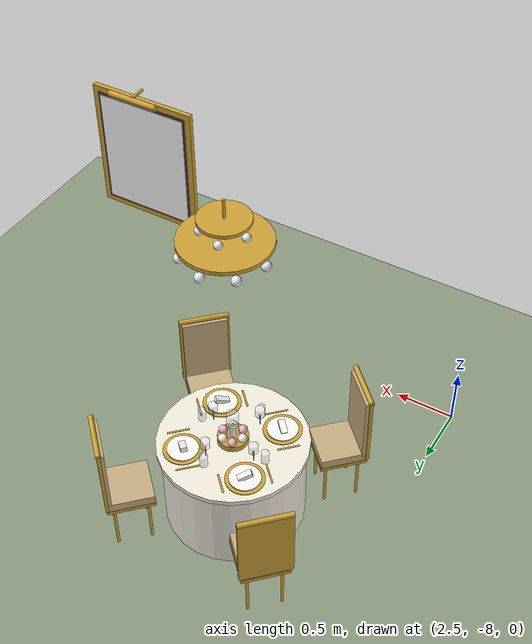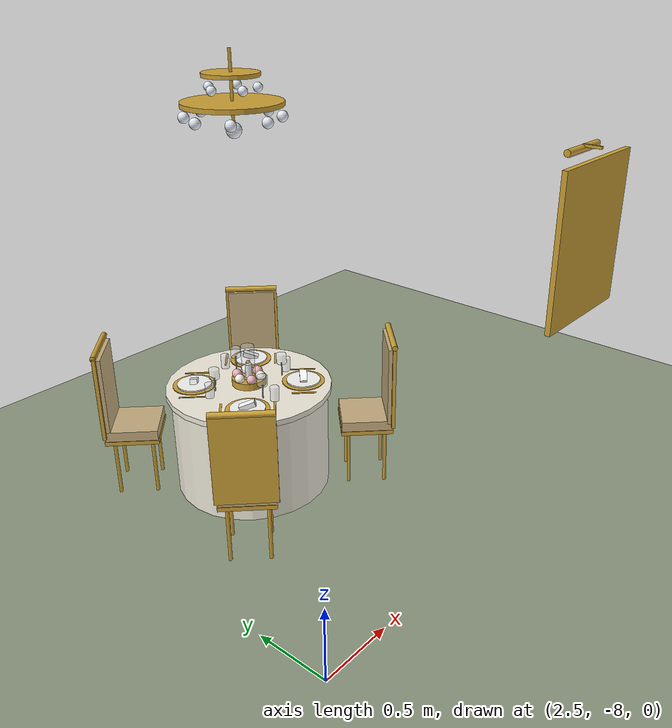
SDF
<sdf version="1.9">
 <world name="dar_tunibot">
  <model name="ground_plane">
   <static>true</static>
   <link name="link">
    <collision name="collision">
     <geometry><plane><normal>0 0 1</normal><size>60 60</size></plane></geometry>
    </collision>
    <visual name="visual">
     <geometry><plane><normal>0 0 1</normal><size>60 60</size></plane></geometry>
     <material><ambient>0.55 0.6 0.5 1</ambient><diffuse>0.55 0.6 0.5 1</diffuse></material>
    </visual>
   </link>
  </model>
  <model name="table_7">
   <static>true</static>
   <pose>3.6 -6.3 0 0 0 0</pose>
   <link name="link">
    <visual name="cloth_v">
     <pose>0.000 0.000 0.370 0.0000 0.0000 0.0000</pose>
     <geometry><cylinder><radius>0.550</radius><length>0.740</length></cylinder></geometry>
     <material>
      <ambient>0.95 0.93 0.87 1</ambient>
      <diffuse>0.95 0.93 0.87 1</diffuse>
      <specular>0.1 0.1 0.1 1</specular>
     </material>
    </visual>
    <collision name="cloth_c">
     <pose>0.000 0.000 0.370 0.0000 0.0000 0.0000</pose>
     <geometry><cylinder><radius>0.550</radius><length>0.740</length></cylinder></geometry>
    </collision>
    <visual name="drape_v">
     <pose>0.000 0.000 0.750 0.0000 0.0000 0.0000</pose>
     <geometry><cylinder><radius>0.580</radius><length>0.040</length></cylinder></geometry>
     <material>
      <ambient>0.95 0.93 0.87 1</ambient>
      <diffuse>0.95 0.93 0.87 1</diffuse>
      <specular>0.1 0.1 0.1 1</specular>
     </material>
    </visual>
    <visual name="bowl_v">
     <pose>0.000 0.000 0.795 0.0000 0.0000 0.0000</pose>
     <geometry><cylinder><radius>0.120</radius><length>0.050</length></cylinder></geometry>
     <material>
      <ambient>0.8 0.63 0.21 1</ambient>
      <diffuse>0.8 0.63 0.21 1</diffuse>
      <specular>0.1 0.1 0.1 1</specular>
     </material>
    </visual>
    <visual name="bowl_foot_v">
     <pose>0.000 0.000 0.775 0.0000 0.0000 0.0000</pose>
     <geometry><cylinder><radius>0.060</radius><length>0.020</length></cylinder></geometry>
     <material>
      <ambient>0.8 0.63 0.21 1</ambient>
      <diffuse>0.8 0.63 0.21 1</diffuse>
      <specular>0.1 0.1 0.1 1</specular>
     </material>
    </visual>
    <visual name="candle_v">
     <pose>0.000 0.000 0.870 0.0000 0.0000 0.0000</pose>
     <geometry><cylinder><radius>0.022</radius><length>0.100</length></cylinder></geometry>
     <material>
      <ambient>0.98 0.98 0.97 1</ambient>
      <diffuse>0.98 0.98 0.97 1</diffuse>
      <specular>0.1 0.1 0.1 1</specular>
     </material>
    </visual>
    <visual name="flame_v">
     <pose>0.000 0.000 0.935 0.0000 0.0000 0.0000</pose>
     <geometry><sphere><radius>0.014</radius></sphere></geometry>
     <material>
      <ambient>0.8 0.63 0.21 1</ambient>
      <diffuse>0.8 0.63 0.21 1</diffuse>
      <specular>0.1 0.1 0.1 1</specular>
      <emissive>1.0 0.6 0.2 1</emissive>
     </material>
    </visual>
    <visual name="hurricane_v">
     <pose>0.000 0.000 0.940 0.0000 0.0000 0.0000</pose>
     <geometry><cylinder><radius>0.045</radius><length>0.240</length></cylinder></geometry>
     <transparency>0.75</transparency>
     <material>
      <ambient>0.9 0.92 0.96 1</ambient>
      <diffuse>0.9 0.92 0.96 1</diffuse>
      <specular>0.1 0.1 0.1 1</specular>
     </material>
    </visual>
    <visual name="rose0_v">
     <pose>0.085 0.000 0.835 0.0000 0.0000 0.0000</pose>
     <geometry><sphere><radius>0.035</radius></sphere></geometry>
     <material>
      <ambient>0.93 0.7 0.72 1</ambient>
      <diffuse>0.93 0.7 0.72 1</diffuse>
      <specular>0.1 0.1 0.1 1</specular>
     </material>
    </visual>
    <visual name="rose1_v">
     <pose>0.043 0.074 0.835 0.0000 0.0000 0.0000</pose>
     <geometry><sphere><radius>0.035</radius></sphere></geometry>
     <material>
      <ambient>0.97 0.95 0.91 1</ambient>
      <diffuse>0.97 0.95 0.91 1</diffuse>
      <specular>0.1 0.1 0.1 1</specular>
     </material>
    </visual>
    <visual name="rose2_v">
     <pose>-0.042 0.074 0.835 0.0000 0.0000 0.0000</pose>
     <geometry><sphere><radius>0.035</radius></sphere></geometry>
     <material>
      <ambient>0.93 0.7 0.72 1</ambient>
      <diffuse>0.93 0.7 0.72 1</diffuse>
      <specular>0.1 0.1 0.1 1</specular>
     </material>
    </visual>
    <visual name="rose3_v">
     <pose>-0.085 0.000 0.835 0.0000 0.0000 0.0000</pose>
     <geometry><sphere><radius>0.035</radius></sphere></geometry>
     <material>
      <ambient>0.97 0.95 0.91 1</ambient>
      <diffuse>0.97 0.95 0.91 1</diffuse>
      <specular>0.1 0.1 0.1 1</specular>
     </material>
    </visual>
    <visual name="rose4_v">
     <pose>-0.043 -0.074 0.835 0.0000 0.0000 0.0000</pose>
     <geometry><sphere><radius>0.035</radius></sphere></geometry>
     <material>
      <ambient>0.93 0.7 0.72 1</ambient>
      <diffuse>0.93 0.7 0.72 1</diffuse>
      <specular>0.1 0.1 0.1 1</specular>
     </material>
    </visual>
    <visual name="rose5_v">
     <pose>0.043 -0.074 0.835 0.0000 0.0000 0.0000</pose>
     <geometry><sphere><radius>0.035</radius></sphere></geometry>
     <material>
      <ambient>0.97 0.95 0.91 1</ambient>
      <diffuse>0.97 0.95 0.91 1</diffuse>
      <specular>0.1 0.1 0.1 1</specular>
     </material>
    </visual>
    <collision name="seat0_c">
     <pose>0.580 0.580 0.225 0.0000 0.0000 0.0000</pose>
     <geometry><box><size>0.400 0.400 0.450</size></box></geometry>
    </collision>
    <visual name="seat_frame0_v">
     <pose>0.580 0.580 0.430 0.0000 0.0000 0.7854</pose>
     <geometry><box><size>0.370 0.370 0.030</size></box></geometry>
     <material>
      <ambient>0.8 0.63 0.21 1</ambient>
      <diffuse>0.8 0.63 0.21 1</diffuse>
      <specular>0.1 0.1 0.1 1</specular>
     </material>
    </visual>
    <visual name="cushion0_v">
     <pose>0.580 0.580 0.480 0.0000 0.0000 0.7854</pose>
     <geometry><box><size>0.360 0.360 0.070</size></box></geometry>
     <material>
      <ambient>0.78 0.68 0.5 1</ambient>
      <diffuse>0.78 0.68 0.5 1</diffuse>
      <specular>0.1 0.1 0.1 1</specular>
     </material>
    </visual>
    <visual name="back_frame0_v">
     <pose>0.707 0.707 0.780 0.0000 0.0000 0.7854</pose>
     <geometry><box><size>0.025 0.400 0.620</size></box></geometry>
     <material>
      <ambient>0.8 0.63 0.21 1</ambient>
      <diffuse>0.8 0.63 0.21 1</diffuse>
      <specular>0.1 0.1 0.1 1</specular>
     </material>
    </visual>
    <visual name="back0_v">
     <pose>0.697 0.697 0.780 0.0000 0.0000 0.7854</pose>
     <geometry><box><size>0.050 0.360 0.580</size></box></geometry>
     <material>
      <ambient>0.78 0.68 0.5 1</ambient>
      <diffuse>0.78 0.68 0.5 1</diffuse>
      <specular>0.1 0.1 0.1 1</specular>
     </material>
    </visual>
    <visual name="back_top0_v">
     <pose>0.707 0.707 1.090 1.5708 0.0000 0.7854</pose>
     <geometry><cylinder><radius>0.020</radius><length>0.400</length></cylinder></geometry>
     <material>
      <ambient>0.8 0.63 0.21 1</ambient>
      <diffuse>0.8 0.63 0.21 1</diffuse>
      <specular>0.1 0.1 0.1 1</specular>
     </material>
    </visual>
    <visual name="leg0_0_v">
     <pose>0.580 0.396 0.210 0.0000 0.0000 0.7854</pose>
     <geometry><cylinder><radius>0.012</radius><length>0.420</length></cylinder></geometry>
     <material>
      <ambient>0.8 0.63 0.21 1</ambient>
      <diffuse>0.8 0.63 0.21 1</diffuse>
      <specular>0.1 0.1 0.1 1</specular>
     </material>
    </visual>
    <visual name="leg0_1_v">
     <pose>0.396 0.580 0.210 0.0000 0.0000 0.7854</pose>
     <geometry><cylinder><radius>0.012</radius><length>0.420</length></cylinder></geometry>
     <material>
      <ambient>0.8 0.63 0.21 1</ambient>
      <diffuse>0.8 0.63 0.21 1</diffuse>
      <specular>0.1 0.1 0.1 1</specular>
     </material>
    </visual>
    <visual name="leg0_2_v">
     <pose>0.764 0.580 0.210 0.0000 0.0000 0.7854</pose>
     <geometry><cylinder><radius>0.012</radius><length>0.420</length></cylinder></geometry>
     <material>
      <ambient>0.8 0.63 0.21 1</ambient>
      <diffuse>0.8 0.63 0.21 1</diffuse>
      <specular>0.1 0.1 0.1 1</specular>
     </material>
    </visual>
    <visual name="leg0_3_v">
     <pose>0.580 0.764 0.210 0.0000 0.0000 0.7854</pose>
     <geometry><cylinder><radius>0.012</radius><length>0.420</length></cylinder></geometry>
     <material>
      <ambient>0.8 0.63 0.21 1</ambient>
      <diffuse>0.8 0.63 0.21 1</diffuse>
      <specular>0.1 0.1 0.1 1</specular>
     </material>
    </visual>
    <visual name="charger0_v">
     <pose>0.269 0.269 0.773 0.0000 0.0000 0.7854</pose>
     <geometry><cylinder><radius>0.150</radius><length>0.006</length></cylinder></geometry>
     <material>
      <ambient>0.8 0.63 0.21 1</ambient>
      <diffuse>0.8 0.63 0.21 1</diffuse>
      <specular>0.1 0.1 0.1 1</specular>
     </material>
    </visual>
    <visual name="plate0_v">
     <pose>0.269 0.269 0.781 0.0000 0.0000 0.7854</pose>
     <geometry><cylinder><radius>0.120</radius><length>0.010</length></cylinder></geometry>
     <material>
      <ambient>0.98 0.98 0.97 1</ambient>
      <diffuse>0.98 0.98 0.97 1</diffuse>
      <specular>0.1 0.1 0.1 1</specular>
     </material>
    </visual>
    <visual name="napkin0_v">
     <pose>0.269 0.269 0.803 0.3500 0.0000 0.7854</pose>
     <geometry><box><size>0.050 0.110 0.035</size></box></geometry>
     <material>
      <ambient>0.98 0.98 0.97 1</ambient>
      <diffuse>0.98 0.98 0.97 1</diffuse>
      <specular>0.1 0.1 0.1 1</specular>
     </material>
    </visual>
    <visual name="fork0_v">
     <pose>0.396 0.141 0.772 0.0000 0.0000 0.7854</pose>
     <geometry><box><size>0.170 0.014 0.004</size></box></geometry>
     <material>
      <ambient>0.8 0.63 0.21 1</ambient>
      <diffuse>0.8 0.63 0.21 1</diffuse>
      <specular>0.1 0.1 0.1 1</specular>
     </material>
    </visual>
    <visual name="knife0_v">
     <pose>0.141 0.396 0.772 0.0000 0.0000 0.7854</pose>
     <geometry><box><size>0.180 0.012 0.004</size></box></geometry>
     <material>
      <ambient>0.8 0.63 0.21 1</ambient>
      <diffuse>0.8 0.63 0.21 1</diffuse>
      <specular>0.1 0.1 0.1 1</specular>
     </material>
    </visual>
    <visual name="wine_stem0_v">
     <pose>0.092 0.233 0.820 0.0000 0.0000 0.7854</pose>
     <geometry><cylinder><radius>0.004</radius><length>0.100</length></cylinder></geometry>
     <material>
      <ambient>0.9 0.92 0.96 1</ambient>
      <diffuse>0.9 0.92 0.96 1</diffuse>
      <specular>0.1 0.1 0.1 1</specular>
     </material>
    </visual>
    <visual name="wine_bowl0_v">
     <pose>0.092 0.233 0.905 0.0000 0.0000 0.7854</pose>
     <geometry><cylinder><radius>0.035</radius><length>0.070</length></cylinder></geometry>
     <transparency>0.6</transparency>
     <material>
      <ambient>0.9 0.92 0.96 1</ambient>
      <diffuse>0.9 0.92 0.96 1</diffuse>
      <specular>0.1 0.1 0.1 1</specular>
     </material>
    </visual>
    <visual name="water0_v">
     <pose>0.057 0.311 0.820 0.0000 0.0000 0.7854</pose>
     <geometry><cylinder><radius>0.030</radius><length>0.100</length></cylinder></geometry>
     <transparency>0.6</transparency>
     <material>
      <ambient>0.9 0.92 0.96 1</ambient>
      <diffuse>0.9 0.92 0.96 1</diffuse>
      <specular>0.1 0.1 0.1 1</specular>
     </material>
    </visual>
    <collision name="seat1_c">
     <pose>-0.580 0.580 0.225 0.0000 0.0000 0.0000</pose>
     <geometry><box><size>0.400 0.400 0.450</size></box></geometry>
    </collision>
    <visual name="seat_frame1_v">
     <pose>-0.580 0.580 0.430 0.0000 0.0000 2.3562</pose>
     <geometry><box><size>0.370 0.370 0.030</size></box></geometry>
     <material>
      <ambient>0.8 0.63 0.21 1</ambient>
      <diffuse>0.8 0.63 0.21 1</diffuse>
      <specular>0.1 0.1 0.1 1</specular>
     </material>
    </visual>
    <visual name="cushion1_v">
     <pose>-0.580 0.580 0.480 0.0000 0.0000 2.3562</pose>
     <geometry><box><size>0.360 0.360 0.070</size></box></geometry>
     <material>
      <ambient>0.78 0.68 0.5 1</ambient>
      <diffuse>0.78 0.68 0.5 1</diffuse>
      <specular>0.1 0.1 0.1 1</specular>
     </material>
    </visual>
    <visual name="back_frame1_v">
     <pose>-0.707 0.707 0.780 0.0000 0.0000 2.3562</pose>
     <geometry><box><size>0.025 0.400 0.620</size></box></geometry>
     <material>
      <ambient>0.8 0.63 0.21 1</ambient>
      <diffuse>0.8 0.63 0.21 1</diffuse>
      <specular>0.1 0.1 0.1 1</specular>
     </material>
    </visual>
    <visual name="back1_v">
     <pose>-0.697 0.697 0.780 0.0000 0.0000 2.3562</pose>
     <geometry><box><size>0.050 0.360 0.580</size></box></geometry>
     <material>
      <ambient>0.78 0.68 0.5 1</ambient>
      <diffuse>0.78 0.68 0.5 1</diffuse>
      <specular>0.1 0.1 0.1 1</specular>
     </material>
    </visual>
    <visual name="back_top1_v">
     <pose>-0.707 0.707 1.090 1.5708 0.0000 2.3562</pose>
     <geometry><cylinder><radius>0.020</radius><length>0.400</length></cylinder></geometry>
     <material>
      <ambient>0.8 0.63 0.21 1</ambient>
      <diffuse>0.8 0.63 0.21 1</diffuse>
      <specular>0.1 0.1 0.1 1</specular>
     </material>
    </visual>
    <visual name="leg1_0_v">
     <pose>-0.396 0.580 0.210 0.0000 0.0000 2.3562</pose>
     <geometry><cylinder><radius>0.012</radius><length>0.420</length></cylinder></geometry>
     <material>
      <ambient>0.8 0.63 0.21 1</ambient>
      <diffuse>0.8 0.63 0.21 1</diffuse>
      <specular>0.1 0.1 0.1 1</specular>
     </material>
    </visual>
    <visual name="leg1_1_v">
     <pose>-0.580 0.396 0.210 0.0000 0.0000 2.3562</pose>
     <geometry><cylinder><radius>0.012</radius><length>0.420</length></cylinder></geometry>
     <material>
      <ambient>0.8 0.63 0.21 1</ambient>
      <diffuse>0.8 0.63 0.21 1</diffuse>
      <specular>0.1 0.1 0.1 1</specular>
     </material>
    </visual>
    <visual name="leg1_2_v">
     <pose>-0.580 0.764 0.210 0.0000 0.0000 2.3562</pose>
     <geometry><cylinder><radius>0.012</radius><length>0.420</length></cylinder></geometry>
     <material>
      <ambient>0.8 0.63 0.21 1</ambient>
      <diffuse>0.8 0.63 0.21 1</diffuse>
      <specular>0.1 0.1 0.1 1</specular>
     </material>
    </visual>
    <visual name="leg1_3_v">
     <pose>-0.764 0.580 0.210 0.0000 0.0000 2.3562</pose>
     <geometry><cylinder><radius>0.012</radius><length>0.420</length></cylinder></geometry>
     <material>
      <ambient>0.8 0.63 0.21 1</ambient>
      <diffuse>0.8 0.63 0.21 1</diffuse>
      <specular>0.1 0.1 0.1 1</specular>
     </material>
    </visual>
    <visual name="charger1_v">
     <pose>-0.269 0.269 0.773 0.0000 0.0000 2.3562</pose>
     <geometry><cylinder><radius>0.150</radius><length>0.006</length></cylinder></geometry>
     <material>
      <ambient>0.8 0.63 0.21 1</ambient>
      <diffuse>0.8 0.63 0.21 1</diffuse>
      <specular>0.1 0.1 0.1 1</specular>
     </material>
    </visual>
    <visual name="plate1_v">
     <pose>-0.269 0.269 0.781 0.0000 0.0000 2.3562</pose>
     <geometry><cylinder><radius>0.120</radius><length>0.010</length></cylinder></geometry>
     <material>
      <ambient>0.98 0.98 0.97 1</ambient>
      <diffuse>0.98 0.98 0.97 1</diffuse>
      <specular>0.1 0.1 0.1 1</specular>
     </material>
    </visual>
    <visual name="napkin1_v">
     <pose>-0.269 0.269 0.803 0.3500 0.0000 2.3562</pose>
     <geometry><box><size>0.050 0.110 0.035</size></box></geometry>
     <material>
      <ambient>0.98 0.98 0.97 1</ambient>
      <diffuse>0.98 0.98 0.97 1</diffuse>
      <specular>0.1 0.1 0.1 1</specular>
     </material>
    </visual>
    <visual name="fork1_v">
     <pose>-0.141 0.396 0.772 0.0000 0.0000 2.3562</pose>
     <geometry><box><size>0.170 0.014 0.004</size></box></geometry>
     <material>
      <ambient>0.8 0.63 0.21 1</ambient>
      <diffuse>0.8 0.63 0.21 1</diffuse>
      <specular>0.1 0.1 0.1 1</specular>
     </material>
    </visual>
    <visual name="knife1_v">
     <pose>-0.396 0.141 0.772 0.0000 0.0000 2.3562</pose>
     <geometry><box><size>0.180 0.012 0.004</size></box></geometry>
     <material>
      <ambient>0.8 0.63 0.21 1</ambient>
      <diffuse>0.8 0.63 0.21 1</diffuse>
      <specular>0.1 0.1 0.1 1</specular>
     </material>
    </visual>
    <visual name="wine_stem1_v">
     <pose>-0.233 0.092 0.820 0.0000 0.0000 2.3562</pose>
     <geometry><cylinder><radius>0.004</radius><length>0.100</length></cylinder></geometry>
     <material>
      <ambient>0.9 0.92 0.96 1</ambient>
      <diffuse>0.9 0.92 0.96 1</diffuse>
      <specular>0.1 0.1 0.1 1</specular>
     </material>
    </visual>
    <visual name="wine_bowl1_v">
     <pose>-0.233 0.092 0.905 0.0000 0.0000 2.3562</pose>
     <geometry><cylinder><radius>0.035</radius><length>0.070</length></cylinder></geometry>
     <transparency>0.6</transparency>
     <material>
      <ambient>0.9 0.92 0.96 1</ambient>
      <diffuse>0.9 0.92 0.96 1</diffuse>
      <specular>0.1 0.1 0.1 1</specular>
     </material>
    </visual>
    <visual name="water1_v">
     <pose>-0.311 0.057 0.820 0.0000 0.0000 2.3562</pose>
     <geometry><cylinder><radius>0.030</radius><length>0.100</length></cylinder></geometry>
     <transparency>0.6</transparency>
     <material>
      <ambient>0.9 0.92 0.96 1</ambient>
      <diffuse>0.9 0.92 0.96 1</diffuse>
      <specular>0.1 0.1 0.1 1</specular>
     </material>
    </visual>
    <collision name="seat2_c">
     <pose>-0.580 -0.580 0.225 0.0000 0.0000 0.0000</pose>
     <geometry><box><size>0.400 0.400 0.450</size></box></geometry>
    </collision>
    <visual name="seat_frame2_v">
     <pose>-0.580 -0.580 0.430 0.0000 0.0000 3.9270</pose>
     <geometry><box><size>0.370 0.370 0.030</size></box></geometry>
     <material>
      <ambient>0.8 0.63 0.21 1</ambient>
      <diffuse>0.8 0.63 0.21 1</diffuse>
      <specular>0.1 0.1 0.1 1</specular>
     </material>
    </visual>
    <visual name="cushion2_v">
     <pose>-0.580 -0.580 0.480 0.0000 0.0000 3.9270</pose>
     <geometry><box><size>0.360 0.360 0.070</size></box></geometry>
     <material>
      <ambient>0.78 0.68 0.5 1</ambient>
      <diffuse>0.78 0.68 0.5 1</diffuse>
      <specular>0.1 0.1 0.1 1</specular>
     </material>
    </visual>
    <visual name="back_frame2_v">
     <pose>-0.707 -0.707 0.780 0.0000 0.0000 3.9270</pose>
     <geometry><box><size>0.025 0.400 0.620</size></box></geometry>
     <material>
      <ambient>0.8 0.63 0.21 1</ambient>
      <diffuse>0.8 0.63 0.21 1</diffuse>
      <specular>0.1 0.1 0.1 1</specular>
     </material>
    </visual>
    <visual name="back2_v">
     <pose>-0.697 -0.697 0.780 0.0000 0.0000 3.9270</pose>
     <geometry><box><size>0.050 0.360 0.580</size></box></geometry>
     <material>
      <ambient>0.78 0.68 0.5 1</ambient>
      <diffuse>0.78 0.68 0.5 1</diffuse>
      <specular>0.1 0.1 0.1 1</specular>
     </material>
    </visual>
    <visual name="back_top2_v">
     <pose>-0.707 -0.707 1.090 1.5708 0.0000 3.9270</pose>
     <geometry><cylinder><radius>0.020</radius><length>0.400</length></cylinder></geometry>
     <material>
      <ambient>0.8 0.63 0.21 1</ambient>
      <diffuse>0.8 0.63 0.21 1</diffuse>
      <specular>0.1 0.1 0.1 1</specular>
     </material>
    </visual>
    <visual name="leg2_0_v">
     <pose>-0.580 -0.396 0.210 0.0000 0.0000 3.9270</pose>
     <geometry><cylinder><radius>0.012</radius><length>0.420</length></cylinder></geometry>
     <material>
      <ambient>0.8 0.63 0.21 1</ambient>
      <diffuse>0.8 0.63 0.21 1</diffuse>
      <specular>0.1 0.1 0.1 1</specular>
     </material>
    </visual>
    <visual name="leg2_1_v">
     <pose>-0.396 -0.580 0.210 0.0000 0.0000 3.9270</pose>
     <geometry><cylinder><radius>0.012</radius><length>0.420</length></cylinder></geometry>
     <material>
      <ambient>0.8 0.63 0.21 1</ambient>
      <diffuse>0.8 0.63 0.21 1</diffuse>
      <specular>0.1 0.1 0.1 1</specular>
     </material>
    </visual>
    <visual name="leg2_2_v">
     <pose>-0.764 -0.580 0.210 0.0000 0.0000 3.9270</pose>
     <geometry><cylinder><radius>0.012</radius><length>0.420</length></cylinder></geometry>
     <material>
      <ambient>0.8 0.63 0.21 1</ambient>
      <diffuse>0.8 0.63 0.21 1</diffuse>
      <specular>0.1 0.1 0.1 1</specular>
     </material>
    </visual>
    <visual name="leg2_3_v">
     <pose>-0.580 -0.764 0.210 0.0000 0.0000 3.9270</pose>
     <geometry><cylinder><radius>0.012</radius><length>0.420</length></cylinder></geometry>
     <material>
      <ambient>0.8 0.63 0.21 1</ambient>
      <diffuse>0.8 0.63 0.21 1</diffuse>
      <specular>0.1 0.1 0.1 1</specular>
     </material>
    </visual>
    <visual name="charger2_v">
     <pose>-0.269 -0.269 0.773 0.0000 0.0000 3.9270</pose>
     <geometry><cylinder><radius>0.150</radius><length>0.006</length></cylinder></geometry>
     <material>
      <ambient>0.8 0.63 0.21 1</ambient>
      <diffuse>0.8 0.63 0.21 1</diffuse>
      <specular>0.1 0.1 0.1 1</specular>
     </material>
    </visual>
    <visual name="plate2_v">
     <pose>-0.269 -0.269 0.781 0.0000 0.0000 3.9270</pose>
     <geometry><cylinder><radius>0.120</radius><length>0.010</length></cylinder></geometry>
     <material>
      <ambient>0.98 0.98 0.97 1</ambient>
      <diffuse>0.98 0.98 0.97 1</diffuse>
      <specular>0.1 0.1 0.1 1</specular>
     </material>
    </visual>
    <visual name="napkin2_v">
     <pose>-0.269 -0.269 0.803 0.3500 0.0000 3.9270</pose>
     <geometry><box><size>0.050 0.110 0.035</size></box></geometry>
     <material>
      <ambient>0.98 0.98 0.97 1</ambient>
      <diffuse>0.98 0.98 0.97 1</diffuse>
      <specular>0.1 0.1 0.1 1</specular>
     </material>
    </visual>
    <visual name="fork2_v">
     <pose>-0.396 -0.141 0.772 0.0000 0.0000 3.9270</pose>
     <geometry><box><size>0.170 0.014 0.004</size></box></geometry>
     <material>
      <ambient>0.8 0.63 0.21 1</ambient>
      <diffuse>0.8 0.63 0.21 1</diffuse>
      <specular>0.1 0.1 0.1 1</specular>
     </material>
    </visual>
    <visual name="knife2_v">
     <pose>-0.141 -0.396 0.772 0.0000 0.0000 3.9270</pose>
     <geometry><box><size>0.180 0.012 0.004</size></box></geometry>
     <material>
      <ambient>0.8 0.63 0.21 1</ambient>
      <diffuse>0.8 0.63 0.21 1</diffuse>
      <specular>0.1 0.1 0.1 1</specular>
     </material>
    </visual>
    <visual name="wine_stem2_v">
     <pose>-0.092 -0.233 0.820 0.0000 0.0000 3.9270</pose>
     <geometry><cylinder><radius>0.004</radius><length>0.100</length></cylinder></geometry>
     <material>
      <ambient>0.9 0.92 0.96 1</ambient>
      <diffuse>0.9 0.92 0.96 1</diffuse>
      <specular>0.1 0.1 0.1 1</specular>
     </material>
    </visual>
    <visual name="wine_bowl2_v">
     <pose>-0.092 -0.233 0.905 0.0000 0.0000 3.9270</pose>
     <geometry><cylinder><radius>0.035</radius><length>0.070</length></cylinder></geometry>
     <transparency>0.6</transparency>
     <material>
      <ambient>0.9 0.92 0.96 1</ambient>
      <diffuse>0.9 0.92 0.96 1</diffuse>
      <specular>0.1 0.1 0.1 1</specular>
     </material>
    </visual>
    <visual name="water2_v">
     <pose>-0.057 -0.311 0.820 0.0000 0.0000 3.9270</pose>
     <geometry><cylinder><radius>0.030</radius><length>0.100</length></cylinder></geometry>
     <transparency>0.6</transparency>
     <material>
      <ambient>0.9 0.92 0.96 1</ambient>
      <diffuse>0.9 0.92 0.96 1</diffuse>
      <specular>0.1 0.1 0.1 1</specular>
     </material>
    </visual>
    <collision name="seat3_c">
     <pose>0.580 -0.580 0.225 0.0000 0.0000 0.0000</pose>
     <geometry><box><size>0.400 0.400 0.450</size></box></geometry>
    </collision>
    <visual name="seat_frame3_v">
     <pose>0.580 -0.580 0.430 0.0000 0.0000 5.4978</pose>
     <geometry><box><size>0.370 0.370 0.030</size></box></geometry>
     <material>
      <ambient>0.8 0.63 0.21 1</ambient>
      <diffuse>0.8 0.63 0.21 1</diffuse>
      <specular>0.1 0.1 0.1 1</specular>
     </material>
    </visual>
    <visual name="cushion3_v">
     <pose>0.580 -0.580 0.480 0.0000 0.0000 5.4978</pose>
     <geometry><box><size>0.360 0.360 0.070</size></box></geometry>
     <material>
      <ambient>0.78 0.68 0.5 1</ambient>
      <diffuse>0.78 0.68 0.5 1</diffuse>
      <specular>0.1 0.1 0.1 1</specular>
     </material>
    </visual>
    <visual name="back_frame3_v">
     <pose>0.707 -0.707 0.780 0.0000 0.0000 5.4978</pose>
     <geometry><box><size>0.025 0.400 0.620</size></box></geometry>
     <material>
      <ambient>0.8 0.63 0.21 1</ambient>
      <diffuse>0.8 0.63 0.21 1</diffuse>
      <specular>0.1 0.1 0.1 1</specular>
     </material>
    </visual>
    <visual name="back3_v">
     <pose>0.697 -0.697 0.780 0.0000 0.0000 5.4978</pose>
     <geometry><box><size>0.050 0.360 0.580</size></box></geometry>
     <material>
      <ambient>0.78 0.68 0.5 1</ambient>
      <diffuse>0.78 0.68 0.5 1</diffuse>
      <specular>0.1 0.1 0.1 1</specular>
     </material>
    </visual>
    <visual name="back_top3_v">
     <pose>0.707 -0.707 1.090 1.5708 0.0000 5.4978</pose>
     <geometry><cylinder><radius>0.020</radius><length>0.400</length></cylinder></geometry>
     <material>
      <ambient>0.8 0.63 0.21 1</ambient>
      <diffuse>0.8 0.63 0.21 1</diffuse>
      <specular>0.1 0.1 0.1 1</specular>
     </material>
    </visual>
    <visual name="leg3_0_v">
     <pose>0.396 -0.580 0.210 0.0000 0.0000 5.4978</pose>
     <geometry><cylinder><radius>0.012</radius><length>0.420</length></cylinder></geometry>
     <material>
      <ambient>0.8 0.63 0.21 1</ambient>
      <diffuse>0.8 0.63 0.21 1</diffuse>
      <specular>0.1 0.1 0.1 1</specular>
     </material>
    </visual>
    <visual name="leg3_1_v">
     <pose>0.580 -0.396 0.210 0.0000 0.0000 5.4978</pose>
     <geometry><cylinder><radius>0.012</radius><length>0.420</length></cylinder></geometry>
     <material>
      <ambient>0.8 0.63 0.21 1</ambient>
      <diffuse>0.8 0.63 0.21 1</diffuse>
      <specular>0.1 0.1 0.1 1</specular>
     </material>
    </visual>
    <visual name="leg3_2_v">
     <pose>0.580 -0.764 0.210 0.0000 0.0000 5.4978</pose>
     <geometry><cylinder><radius>0.012</radius><length>0.420</length></cylinder></geometry>
     <material>
      <ambient>0.8 0.63 0.21 1</ambient>
      <diffuse>0.8 0.63 0.21 1</diffuse>
      <specular>0.1 0.1 0.1 1</specular>
     </material>
    </visual>
    <visual name="leg3_3_v">
     <pose>0.764 -0.580 0.210 0.0000 0.0000 5.4978</pose>
     <geometry><cylinder><radius>0.012</radius><length>0.420</length></cylinder></geometry>
     <material>
      <ambient>0.8 0.63 0.21 1</ambient>
      <diffuse>0.8 0.63 0.21 1</diffuse>
      <specular>0.1 0.1 0.1 1</specular>
     </material>
    </visual>
    <visual name="charger3_v">
     <pose>0.269 -0.269 0.773 0.0000 0.0000 5.4978</pose>
     <geometry><cylinder><radius>0.150</radius><length>0.006</length></cylinder></geometry>
     <material>
      <ambient>0.8 0.63 0.21 1</ambient>
      <diffuse>0.8 0.63 0.21 1</diffuse>
      <specular>0.1 0.1 0.1 1</specular>
     </material>
    </visual>
    <visual name="plate3_v">
     <pose>0.269 -0.269 0.781 0.0000 0.0000 5.4978</pose>
     <geometry><cylinder><radius>0.120</radius><length>0.010</length></cylinder></geometry>
     <material>
      <ambient>0.98 0.98 0.97 1</ambient>
      <diffuse>0.98 0.98 0.97 1</diffuse>
      <specular>0.1 0.1 0.1 1</specular>
     </material>
    </visual>
    <visual name="napkin3_v">
     <pose>0.269 -0.269 0.803 0.3500 0.0000 5.4978</pose>
     <geometry><box><size>0.050 0.110 0.035</size></box></geometry>
     <material>
      <ambient>0.98 0.98 0.97 1</ambient>
      <diffuse>0.98 0.98 0.97 1</diffuse>
      <specular>0.1 0.1 0.1 1</specular>
     </material>
    </visual>
    <visual name="fork3_v">
     <pose>0.141 -0.396 0.772 0.0000 0.0000 5.4978</pose>
     <geometry><box><size>0.170 0.014 0.004</size></box></geometry>
     <material>
      <ambient>0.8 0.63 0.21 1</ambient>
      <diffuse>0.8 0.63 0.21 1</diffuse>
      <specular>0.1 0.1 0.1 1</specular>
     </material>
    </visual>
    <visual name="knife3_v">
     <pose>0.396 -0.141 0.772 0.0000 0.0000 5.4978</pose>
     <geometry><box><size>0.180 0.012 0.004</size></box></geometry>
     <material>
      <ambient>0.8 0.63 0.21 1</ambient>
      <diffuse>0.8 0.63 0.21 1</diffuse>
      <specular>0.1 0.1 0.1 1</specular>
     </material>
    </visual>
    <visual name="wine_stem3_v">
     <pose>0.233 -0.092 0.820 0.0000 0.0000 5.4978</pose>
     <geometry><cylinder><radius>0.004</radius><length>0.100</length></cylinder></geometry>
     <material>
      <ambient>0.9 0.92 0.96 1</ambient>
      <diffuse>0.9 0.92 0.96 1</diffuse>
      <specular>0.1 0.1 0.1 1</specular>
     </material>
    </visual>
    <visual name="wine_bowl3_v">
     <pose>0.233 -0.092 0.905 0.0000 0.0000 5.4978</pose>
     <geometry><cylinder><radius>0.035</radius><length>0.070</length></cylinder></geometry>
     <transparency>0.6</transparency>
     <material>
      <ambient>0.9 0.92 0.96 1</ambient>
      <diffuse>0.9 0.92 0.96 1</diffuse>
      <specular>0.1 0.1 0.1 1</specular>
     </material>
    </visual>
    <visual name="water3_v">
     <pose>0.311 -0.057 0.820 0.0000 0.0000 5.4978</pose>
     <geometry><cylinder><radius>0.030</radius><length>0.100</length></cylinder></geometry>
     <transparency>0.6</transparency>
     <material>
      <ambient>0.9 0.92 0.96 1</ambient>
      <diffuse>0.9 0.92 0.96 1</diffuse>
      <specular>0.1 0.1 0.1 1</specular>
     </material>
    </visual>
    <visual name="chand_rod_v">
     <pose>0.000 0.000 2.750 0.0000 0.0000 0.0000</pose>
     <geometry><cylinder><radius>0.010</radius><length>0.500</length></cylinder></geometry>
     <material>
      <ambient>0.8 0.63 0.21 1</ambient>
      <diffuse>0.8 0.63 0.21 1</diffuse>
      <specular>0.1 0.1 0.1 1</specular>
     </material>
    </visual>
    <visual name="chand_ring_v">
     <pose>0.000 0.000 2.680 0.0000 0.0000 0.0000</pose>
     <geometry><cylinder><radius>0.320</radius><length>0.030</length></cylinder></geometry>
     <material>
      <ambient>0.8 0.63 0.21 1</ambient>
      <diffuse>0.8 0.63 0.21 1</diffuse>
      <specular>0.1 0.1 0.1 1</specular>
     </material>
    </visual>
    <visual name="chand_ring_top_v">
     <pose>0.000 0.000 2.850 0.0000 0.0000 0.0000</pose>
     <geometry><cylinder><radius>0.180</radius><length>0.025</length></cylinder></geometry>
     <material>
      <ambient>0.8 0.63 0.21 1</ambient>
      <diffuse>0.8 0.63 0.21 1</diffuse>
      <specular>0.1 0.1 0.1 1</specular>
     </material>
    </visual>
    <visual name="chand_drop_v">
     <pose>0.000 0.000 2.520 0.0000 0.0000 0.0000</pose>
     <geometry><sphere><radius>0.050</radius></sphere></geometry>
     <material>
      <ambient>0.9 0.92 0.96 1</ambient>
      <diffuse>0.9 0.92 0.96 1</diffuse>
      <specular>0.1 0.1 0.1 1</specular>
      <emissive>0.55 0.52 0.45 1</emissive>
     </material>
    </visual>
    <visual name="crystal0_0_v">
     <pose>0.300 0.000 2.600 0.0000 0.0000 0.0000</pose>
     <geometry><sphere><radius>0.035</radius></sphere></geometry>
     <material>
      <ambient>0.9 0.92 0.96 1</ambient>
      <diffuse>0.9 0.92 0.96 1</diffuse>
      <specular>0.1 0.1 0.1 1</specular>
      <emissive>0.55 0.52 0.45 1</emissive>
     </material>
    </visual>
    <visual name="crystal0_1_v">
     <pose>0.212 0.212 2.600 0.0000 0.0000 0.0000</pose>
     <geometry><sphere><radius>0.035</radius></sphere></geometry>
     <material>
      <ambient>0.9 0.92 0.96 1</ambient>
      <diffuse>0.9 0.92 0.96 1</diffuse>
      <specular>0.1 0.1 0.1 1</specular>
      <emissive>0.55 0.52 0.45 1</emissive>
     </material>
    </visual>
    <visual name="crystal0_2_v">
     <pose>0.000 0.300 2.600 0.0000 0.0000 0.0000</pose>
     <geometry><sphere><radius>0.035</radius></sphere></geometry>
     <material>
      <ambient>0.9 0.92 0.96 1</ambient>
      <diffuse>0.9 0.92 0.96 1</diffuse>
      <specular>0.1 0.1 0.1 1</specular>
      <emissive>0.55 0.52 0.45 1</emissive>
     </material>
    </visual>
    <visual name="crystal0_3_v">
     <pose>-0.212 0.212 2.600 0.0000 0.0000 0.0000</pose>
     <geometry><sphere><radius>0.035</radius></sphere></geometry>
     <material>
      <ambient>0.9 0.92 0.96 1</ambient>
      <diffuse>0.9 0.92 0.96 1</diffuse>
      <specular>0.1 0.1 0.1 1</specular>
      <emissive>0.55 0.52 0.45 1</emissive>
     </material>
    </visual>
    <visual name="crystal0_4_v">
     <pose>-0.300 0.000 2.600 0.0000 0.0000 0.0000</pose>
     <geometry><sphere><radius>0.035</radius></sphere></geometry>
     <material>
      <ambient>0.9 0.92 0.96 1</ambient>
      <diffuse>0.9 0.92 0.96 1</diffuse>
      <specular>0.1 0.1 0.1 1</specular>
      <emissive>0.55 0.52 0.45 1</emissive>
     </material>
    </visual>
    <visual name="crystal0_5_v">
     <pose>-0.212 -0.212 2.600 0.0000 0.0000 0.0000</pose>
     <geometry><sphere><radius>0.035</radius></sphere></geometry>
     <material>
      <ambient>0.9 0.92 0.96 1</ambient>
      <diffuse>0.9 0.92 0.96 1</diffuse>
      <specular>0.1 0.1 0.1 1</specular>
      <emissive>0.55 0.52 0.45 1</emissive>
     </material>
    </visual>
    <visual name="crystal0_6_v">
     <pose>-0.000 -0.300 2.600 0.0000 0.0000 0.0000</pose>
     <geometry><sphere><radius>0.035</radius></sphere></geometry>
     <material>
      <ambient>0.9 0.92 0.96 1</ambient>
      <diffuse>0.9 0.92 0.96 1</diffuse>
      <specular>0.1 0.1 0.1 1</specular>
      <emissive>0.55 0.52 0.45 1</emissive>
     </material>
    </visual>
    <visual name="crystal0_7_v">
     <pose>0.212 -0.212 2.600 0.0000 0.0000 0.0000</pose>
     <geometry><sphere><radius>0.035</radius></sphere></geometry>
     <material>
      <ambient>0.9 0.92 0.96 1</ambient>
      <diffuse>0.9 0.92 0.96 1</diffuse>
      <specular>0.1 0.1 0.1 1</specular>
      <emissive>0.55 0.52 0.45 1</emissive>
     </material>
    </visual>
    <visual name="crystal1_0_v">
     <pose>0.129 0.094 2.770 0.0000 0.0000 0.0000</pose>
     <geometry><sphere><radius>0.030</radius></sphere></geometry>
     <material>
      <ambient>0.9 0.92 0.96 1</ambient>
      <diffuse>0.9 0.92 0.96 1</diffuse>
      <specular>0.1 0.1 0.1 1</specular>
      <emissive>0.55 0.52 0.45 1</emissive>
     </material>
    </visual>
    <visual name="crystal1_1_v">
     <pose>-0.049 0.152 2.770 0.0000 0.0000 0.0000</pose>
     <geometry><sphere><radius>0.030</radius></sphere></geometry>
     <material>
      <ambient>0.9 0.92 0.96 1</ambient>
      <diffuse>0.9 0.92 0.96 1</diffuse>
      <specular>0.1 0.1 0.1 1</specular>
      <emissive>0.55 0.52 0.45 1</emissive>
     </material>
    </visual>
    <visual name="crystal1_2_v">
     <pose>-0.160 0.000 2.770 0.0000 0.0000 0.0000</pose>
     <geometry><sphere><radius>0.030</radius></sphere></geometry>
     <material>
      <ambient>0.9 0.92 0.96 1</ambient>
      <diffuse>0.9 0.92 0.96 1</diffuse>
      <specular>0.1 0.1 0.1 1</specular>
      <emissive>0.55 0.52 0.45 1</emissive>
     </material>
    </visual>
    <visual name="crystal1_3_v">
     <pose>-0.049 -0.152 2.770 0.0000 0.0000 0.0000</pose>
     <geometry><sphere><radius>0.030</radius></sphere></geometry>
     <material>
      <ambient>0.9 0.92 0.96 1</ambient>
      <diffuse>0.9 0.92 0.96 1</diffuse>
      <specular>0.1 0.1 0.1 1</specular>
      <emissive>0.55 0.52 0.45 1</emissive>
     </material>
    </visual>
    <visual name="crystal1_4_v">
     <pose>0.129 -0.094 2.770 0.0000 0.0000 0.0000</pose>
     <geometry><sphere><radius>0.030</radius></sphere></geometry>
     <material>
      <ambient>0.9 0.92 0.96 1</ambient>
      <diffuse>0.9 0.92 0.96 1</diffuse>
      <specular>0.1 0.1 0.1 1</specular>
      <emissive>0.55 0.52 0.45 1</emissive>
     </material>
    </visual>
   </link>
  </model>
  <model name="art_terrace_east">
   <static>true</static>
   <pose>5.4 -7.9 0 0 0 1.5707963267948966</pose>
   <link name="link">
    <visual name="frame_v">
     <pose>0.030 0.000 1.700 0.0000 0.0000 0.0000</pose>
     <geometry><box><size>0.040 0.940 1.140</size></box></geometry>
     <material>
      <ambient>0.8 0.63 0.21 1</ambient>
      <diffuse>0.8 0.63 0.21 1</diffuse>
      <specular>0.1 0.1 0.1 1</specular>
     </material>
    </visual>
    <visual name="liner_v">
     <pose>0.052 0.000 1.700 0.0000 0.0000 0.0000</pose>
     <geometry><box><size>0.010 0.840 1.040</size></box></geometry>
     <material>
      <ambient>0.2 0.12 0.07 1</ambient>
      <diffuse>0.2 0.12 0.07 1</diffuse>
      <specular>0.1 0.1 0.1 1</specular>
     </material>
    </visual>
    <visual name="canvas_v">
     <pose>0.057 0.000 1.700 0.0000 0.0000 0.0000</pose>
     <geometry><box><size>0.010 0.800 1.000</size></box></geometry>
     <material>
      <ambient>1 1 1 1</ambient>
      <diffuse>1 1 1 1</diffuse>
      <specular>0.05 0.05 0.05 1</specular>
      <pbr>
       <metal>
        <albedo_map>model://dar_art/materials/textures/blue_door.png</albedo_map>
        <roughness>0.9</roughness>
        <metalness>0.0</metalness>
       </metal>
      </pbr>
     </material>
    </visual>
    <visual name="lamp_arm_v">
     <pose>0.080 0.000 2.340 0.0000 0.0000 0.0000</pose>
     <geometry><box><size>0.140 0.020 0.020</size></box></geometry>
     <material>
      <ambient>0.8 0.63 0.21 1</ambient>
      <diffuse>0.8 0.63 0.21 1</diffuse>
      <specular>0.1 0.1 0.1 1</specular>
     </material>
    </visual>
    <visual name="lamp_v">
     <pose>0.150 0.000 2.320 1.5708 0.0000 0.0000</pose>
     <geometry><cylinder><radius>0.025</radius><length>0.440</length></cylinder></geometry>
     <material>
      <ambient>0.8 0.63 0.21 1</ambient>
      <diffuse>0.8 0.63 0.21 1</diffuse>
      <specular>0.1 0.1 0.1 1</specular>
     </material>
    </visual>
    <visual name="lamp_glow_v">
     <pose>0.150 0.000 2.295 0.0000 0.0000 0.0000</pose>
     <geometry><box><size>0.020 0.400 0.010</size></box></geometry>
     <material>
      <ambient>1.0 0.85 0.6 1</ambient>
      <diffuse>1.0 0.85 0.6 1</diffuse>
      <specular>0.1 0.1 0.1 1</specular>
      <emissive>1.0 0.8 0.5 1</emissive>
     </material>
    </visual>
   </link>
  </model>
 </world>
</sdf>
